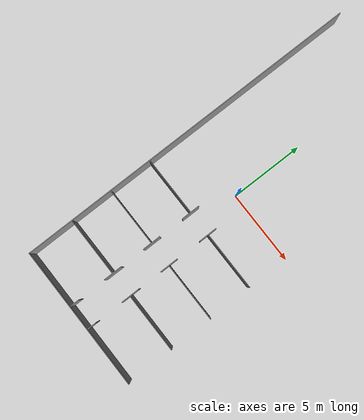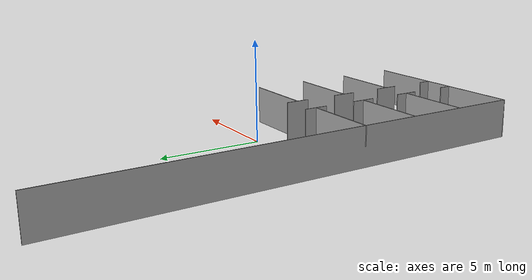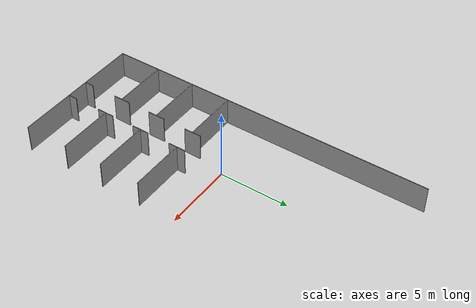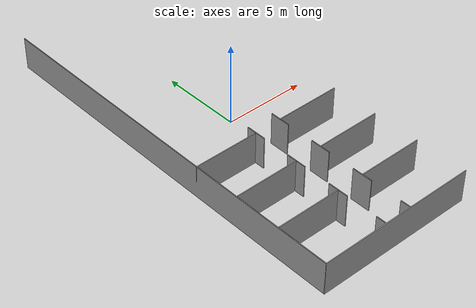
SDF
<sdf version="1.6">
 <model name="Straight_corridor_v2">
  <link name="long_wall_1">
   <inertial>
    <mass>61760</mass>
    <inertia>
     <ixx>5.2702e+06</ixx>
     <ixy>0</ixy>
     <ixz>0</ixz>
     <iyy>20599.5</iyy>
     <iyz>0</iyz>
     <izz>5.29077e+06</izz>
    </inertia>
   </inertial>
   <pose>-4.875 0 0.5 0 1.57066 0</pose>
   <visual name="visual">
    <geometry><box><size>2 24 0.05</size></box></geometry>
    <material>
     <lighting>1</lighting>
     <script><uri>file://media/materials/scripts/gazebo.material</uri><name>Gazebo/Grey</name></script>
     <shader type="vertex"><normal_map>__default__</normal_map></shader>
     <ambient>0.3 0.3 0.3 1</ambient>
     <diffuse>0.7 0.7 0.7 1</diffuse>
     <specular>0.01 0.01 0.01 1</specular>
     <emissive>0 0 0 1</emissive>
    </material>
   </visual>
   <collision name="collision">
    <geometry><box><size>2 24 0.05</size></box></geometry>
    <surface>
     <friction>
      <ode><mu>1</mu><mu2>1</mu2><fdir1>0 0 0</fdir1><slip1>0</slip1><slip2>0</slip2></ode>
      <torsional>
       <coefficient>1</coefficient>
       <patch_radius>0</patch_radius>
       <surface_radius>0</surface_radius>
       <use_patch_radius>1</use_patch_radius>
       <ode><slip>0</slip></ode>
      </torsional>
     </friction>
     <bounce><restitution_coefficient>0</restitution_coefficient><threshold>1e+06</threshold></bounce>
     <contact>
      <collide_without_contact>0</collide_without_contact>
      <collide_without_contact_bitmask>1</collide_without_contact_bitmask>
      <collide_bitmask>1</collide_bitmask>
      <ode>
       <soft_cfm>0</soft_cfm>
       <soft_erp>0.2</soft_erp>
       <kp>1e+13</kp>
       <kd>1</kd>
       <max_vel>0.01</max_vel>
       <min_depth>0</min_depth>
      </ode>
      <bullet>
       <split_impulse>1</split_impulse>
       <split_impulse_penetration_threshold>-0.01</split_impulse_penetration_threshold>
       <soft_cfm>0</soft_cfm>
       <soft_erp>0.2</soft_erp>
       <kp>1e+13</kp>
       <kd>1</kd>
      </bullet>
     </contact>
    </surface>
   </collision>
  </link>
  <link name="link_0_clone_0">
   <inertial>
    <mass>30880</mass>
    <inertia><ixx>658780</ixx><ixy>0</ixy><ixz>0</ixz><iyy>10299.8</iyy><iyz>0</iyz><izz>669067</izz></inertia>
   </inertial>
   <pose>-0 -12 0.5 1.58015 1.57079 -3.13224</pose>
   <visual name="visual">
    <geometry><box><size>2 9.8 0.05</size></box></geometry>
    <material>
     <lighting>1</lighting>
     <script><uri>file://media/materials/scripts/gazebo.material</uri><name>Gazebo/Grey</name></script>
     <shader type="pixel"><normal_map>__default__</normal_map></shader>
     <ambient>0.3 0.3 0.3 1</ambient>
     <diffuse>0.7 0.7 0.7 1</diffuse>
     <specular>0.01 0.01 0.01 1</specular>
     <emissive>0 0 0 1</emissive>
    </material>
   </visual>
   <collision name="collision">
    <geometry><box><size>2 9.8 0.05</size></box></geometry>
    <surface>
     <friction>
      <ode><mu>1</mu><mu2>1</mu2><fdir1>0 0 0</fdir1><slip1>0</slip1><slip2>0</slip2></ode>
      <torsional>
       <coefficient>1</coefficient>
       <patch_radius>0</patch_radius>
       <surface_radius>0</surface_radius>
       <use_patch_radius>1</use_patch_radius>
       <ode><slip>0</slip></ode>
      </torsional>
     </friction>
     <bounce><restitution_coefficient>0</restitution_coefficient><threshold>1e+06</threshold></bounce>
     <contact>
      <collide_without_contact>0</collide_without_contact>
      <collide_without_contact_bitmask>1</collide_without_contact_bitmask>
      <collide_bitmask>1</collide_bitmask>
      <ode>
       <soft_cfm>0</soft_cfm>
       <soft_erp>0.2</soft_erp>
       <kp>1e+13</kp>
       <kd>1</kd>
       <max_vel>0.01</max_vel>
       <min_depth>0</min_depth>
      </ode>
      <bullet>
       <split_impulse>1</split_impulse>
       <split_impulse_penetration_threshold>-0.01</split_impulse_penetration_threshold>
       <soft_cfm>0</soft_cfm>
       <soft_erp>0.2</soft_erp>
       <kp>1e+13</kp>
       <kd>1</kd>
      </bullet>
     </contact>
    </surface>
   </collision>
  </link>
  <link name="link_0_clone_clone">
   <inertial>
    <mass>2412.5</mass>
    <inertia><ixx>314.63</ixx><ixy>0</ixy><ixz>0</ixz><iyy>804.669</iyy><iyz>0</iyz><izz>1118.29</izz></inertia>
   </inertial>
   <pose>0.85 -8.8 0.500001 3.14159 1.57079 3.14159</pose>
   <visual name="visual">
    <geometry><box><size>2 1.25 0.05</size></box></geometry>
    <material>
     <lighting>1</lighting>
     <script><uri>file://media/materials/scripts/gazebo.material</uri><name>Gazebo/Grey</name></script>
     <shader type="pixel"><normal_map>__default__</normal_map></shader>
     <ambient>0.3 0.3 0.3 1</ambient>
     <diffuse>0.7 0.7 0.7 1</diffuse>
     <specular>0.01 0.01 0.01 1</specular>
     <emissive>0 0 0 1</emissive>
    </material>
   </visual>
   <collision name="collision">
    <geometry><box><size>2 1.25 0.05</size></box></geometry>
    <surface>
     <friction>
      <ode><mu>1</mu><mu2>1</mu2><fdir1>0 0 0</fdir1><slip1>0</slip1><slip2>0</slip2></ode>
      <torsional>
       <coefficient>1</coefficient>
       <patch_radius>0</patch_radius>
       <surface_radius>0</surface_radius>
       <use_patch_radius>1</use_patch_radius>
       <ode><slip>0</slip></ode>
      </torsional>
     </friction>
     <bounce><restitution_coefficient>0</restitution_coefficient><threshold>1e+06</threshold></bounce>
     <contact>
      <collide_without_contact>0</collide_without_contact>
      <collide_without_contact_bitmask>1</collide_without_contact_bitmask>
      <collide_bitmask>1</collide_bitmask>
      <ode>
       <soft_cfm>0</soft_cfm>
       <soft_erp>0.2</soft_erp>
       <kp>1e+13</kp>
       <kd>1</kd>
       <max_vel>0.01</max_vel>
       <min_depth>0</min_depth>
      </ode>
      <bullet>
       <split_impulse>1</split_impulse>
       <split_impulse_penetration_threshold>-0.01</split_impulse_penetration_threshold>
       <soft_cfm>0</soft_cfm>
       <soft_erp>0.2</soft_erp>
       <kp>1e+13</kp>
       <kd>1</kd>
      </bullet>
     </contact>
    </surface>
   </collision>
  </link>
  <link name="link_0_clone_clone_clone">
   <inertial>
    <mass>2412.5</mass>
    <inertia><ixx>314.63</ixx><ixy>0</ixy><ixz>0</ixz><iyy>804.669</iyy><iyz>0</iyz><izz>1118.29</izz></inertia>
   </inertial>
   <pose>0.85 -5.8665 0.5 0 1.57066 0</pose>
   <visual name="visual">
    <geometry><box><size>2 1.25 0.05</size></box></geometry>
    <material>
     <lighting>1</lighting>
     <script><uri>file://media/materials/scripts/gazebo.material</uri><name>Gazebo/Grey</name></script>
     <shader type="pixel"><normal_map>__default__</normal_map></shader>
     <ambient>0.3 0.3 0.3 1</ambient>
     <diffuse>0.7 0.7 0.7 1</diffuse>
     <specular>0.01 0.01 0.01 1</specular>
     <emissive>0 0 0 1</emissive>
    </material>
   </visual>
   <collision name="collision">
    <geometry><box><size>2 1.25 0.05</size></box></geometry>
    <surface>
     <friction>
      <ode><mu>1</mu><mu2>1</mu2><fdir1>0 0 0</fdir1><slip1>0</slip1><slip2>0</slip2></ode>
      <torsional>
       <coefficient>1</coefficient>
       <patch_radius>0</patch_radius>
       <surface_radius>0</surface_radius>
       <use_patch_radius>1</use_patch_radius>
       <ode><slip>0</slip></ode>
      </torsional>
     </friction>
     <bounce><restitution_coefficient>0</restitution_coefficient><threshold>1e+06</threshold></bounce>
     <contact>
      <collide_without_contact>0</collide_without_contact>
      <collide_without_contact_bitmask>1</collide_without_contact_bitmask>
      <collide_bitmask>1</collide_bitmask>
      <ode>
       <soft_cfm>0</soft_cfm>
       <soft_erp>0.2</soft_erp>
       <kp>1e+13</kp>
       <kd>1</kd>
       <max_vel>0.01</max_vel>
       <min_depth>0</min_depth>
      </ode>
      <bullet>
       <split_impulse>1</split_impulse>
       <split_impulse_penetration_threshold>-0.01</split_impulse_penetration_threshold>
       <soft_cfm>0</soft_cfm>
       <soft_erp>0.2</soft_erp>
       <kp>1e+13</kp>
       <kd>1</kd>
      </bullet>
     </contact>
    </surface>
   </collision>
  </link>
  <link name="link_0_clone_clone_clone_0">
   <inertial>
    <mass>2412.5</mass>
    <inertia><ixx>314.63</ixx><ixy>0</ixy><ixz>0</ixz><iyy>804.669</iyy><iyz>0</iyz><izz>1118.29</izz></inertia>
   </inertial>
   <pose>0.85 -2.895 0.5 0 1.57066 0</pose>
   <visual name="visual">
    <geometry><box><size>2 1.25 0.05</size></box></geometry>
    <material>
     <lighting>1</lighting>
     <script><uri>file://media/materials/scripts/gazebo.material</uri><name>Gazebo/Grey</name></script>
     <shader type="pixel"><normal_map>__default__</normal_map></shader>
     <ambient>0.3 0.3 0.3 1</ambient>
     <diffuse>0.7 0.7 0.7 1</diffuse>
     <specular>0.01 0.01 0.01 1</specular>
     <emissive>0 0 0 1</emissive>
    </material>
   </visual>
   <collision name="collision">
    <geometry><box><size>2 1.25 0.05</size></box></geometry>
    <surface>
     <friction>
      <ode><mu>1</mu><mu2>1</mu2><fdir1>0 0 0</fdir1><slip1>0</slip1><slip2>0</slip2></ode>
      <torsional>
       <coefficient>1</coefficient>
       <patch_radius>0</patch_radius>
       <surface_radius>0</surface_radius>
       <use_patch_radius>1</use_patch_radius>
       <ode><slip>0</slip></ode>
      </torsional>
     </friction>
     <bounce><restitution_coefficient>0</restitution_coefficient><threshold>1e+06</threshold></bounce>
     <contact>
      <collide_without_contact>0</collide_without_contact>
      <collide_without_contact_bitmask>1</collide_without_contact_bitmask>
      <collide_bitmask>1</collide_bitmask>
      <ode>
       <soft_cfm>0</soft_cfm>
       <soft_erp>0.2</soft_erp>
       <kp>1e+13</kp>
       <kd>1</kd>
       <max_vel>0.01</max_vel>
       <min_depth>0</min_depth>
      </ode>
      <bullet>
       <split_impulse>1</split_impulse>
       <split_impulse_penetration_threshold>-0.01</split_impulse_penetration_threshold>
       <soft_cfm>0</soft_cfm>
       <soft_erp>0.2</soft_erp>
       <kp>1e+13</kp>
       <kd>1</kd>
      </bullet>
     </contact>
    </surface>
   </collision>
  </link>
  <link name="link_0_clone_clone_clone_0_clone">
   <inertial>
    <mass>2412.5</mass>
    <inertia><ixx>314.63</ixx><ixy>0</ixy><ixz>0</ixz><iyy>804.669</iyy><iyz>0</iyz><izz>1118.29</izz></inertia>
   </inertial>
   <pose>-0.85 -2.895 0.5 0 1.57051 0</pose>
   <visual name="visual">
    <geometry><box><size>2 1.25 0.05</size></box></geometry>
    <material>
     <lighting>1</lighting>
     <script><uri>file://media/materials/scripts/gazebo.material</uri><name>Gazebo/Grey</name></script>
     <shader type="pixel"><normal_map>__default__</normal_map></shader>
     <ambient>0.3 0.3 0.3 1</ambient>
     <diffuse>0.7 0.7 0.7 1</diffuse>
     <specular>0.01 0.01 0.01 1</specular>
     <emissive>0 0 0 1</emissive>
    </material>
   </visual>
   <collision name="collision">
    <geometry><box><size>2 1.25 0.05</size></box></geometry>
    <surface>
     <friction>
      <ode><mu>1</mu><mu2>1</mu2><fdir1>0 0 0</fdir1><slip1>0</slip1><slip2>0</slip2></ode>
      <torsional>
       <coefficient>1</coefficient>
       <patch_radius>0</patch_radius>
       <surface_radius>0</surface_radius>
       <use_patch_radius>1</use_patch_radius>
       <ode><slip>0</slip></ode>
      </torsional>
     </friction>
     <bounce><restitution_coefficient>0</restitution_coefficient><threshold>1e+06</threshold></bounce>
     <contact>
      <collide_without_contact>0</collide_without_contact>
      <collide_without_contact_bitmask>1</collide_without_contact_bitmask>
      <collide_bitmask>1</collide_bitmask>
      <ode>
       <soft_cfm>0</soft_cfm>
       <soft_erp>0.2</soft_erp>
       <kp>1e+13</kp>
       <kd>1</kd>
       <max_vel>0.01</max_vel>
       <min_depth>0</min_depth>
      </ode>
      <bullet>
       <split_impulse>1</split_impulse>
       <split_impulse_penetration_threshold>-0.01</split_impulse_penetration_threshold>
       <soft_cfm>0</soft_cfm>
       <soft_erp>0.2</soft_erp>
       <kp>1e+13</kp>
       <kd>1</kd>
      </bullet>
     </contact>
    </surface>
   </collision>
  </link>
  <link name="link_0_clone_clone_clone_4">
   <inertial>
    <mass>1206.25</mass>
    <inertia><ixx>39.5173</ixx><ixy>0</ixy><ixz>0</ixz><iyy>402.335</iyy><iyz>0</iyz><izz>441.349</izz></inertia>
   </inertial>
   <pose>0.85 -11.6736 0.5 0 1.57066 0</pose>
   <visual name="visual">
    <geometry><box><size>2 0.625 0.05</size></box></geometry>
    <material>
     <lighting>1</lighting>
     <script><uri>file://media/materials/scripts/gazebo.material</uri><name>Gazebo/Grey</name></script>
     <shader type="pixel"><normal_map>__default__</normal_map></shader>
     <ambient>0.3 0.3 0.3 1</ambient>
     <diffuse>0.7 0.7 0.7 1</diffuse>
     <specular>0.01 0.01 0.01 1</specular>
     <emissive>0 0 0 1</emissive>
    </material>
   </visual>
   <collision name="collision">
    <geometry><box><size>2 0.625 0.05</size></box></geometry>
    <surface>
     <friction>
      <ode><mu>1</mu><mu2>1</mu2><fdir1>0 0 0</fdir1><slip1>0</slip1><slip2>0</slip2></ode>
      <torsional>
       <coefficient>1</coefficient>
       <patch_radius>0</patch_radius>
       <surface_radius>0</surface_radius>
       <use_patch_radius>1</use_patch_radius>
       <ode><slip>0</slip></ode>
      </torsional>
     </friction>
     <bounce><restitution_coefficient>0</restitution_coefficient><threshold>1e+06</threshold></bounce>
     <contact>
      <collide_without_contact>0</collide_without_contact>
      <collide_without_contact_bitmask>1</collide_without_contact_bitmask>
      <collide_bitmask>1</collide_bitmask>
      <ode>
       <soft_cfm>0</soft_cfm>
       <soft_erp>0.2</soft_erp>
       <kp>1e+13</kp>
       <kd>1</kd>
       <max_vel>0.01</max_vel>
       <min_depth>0</min_depth>
      </ode>
      <bullet>
       <split_impulse>1</split_impulse>
       <split_impulse_penetration_threshold>-0.01</split_impulse_penetration_threshold>
       <soft_cfm>0</soft_cfm>
       <soft_erp>0.2</soft_erp>
       <kp>1e+13</kp>
       <kd>1</kd>
      </bullet>
     </contact>
    </surface>
   </collision>
  </link>
  <link name="link_0_clone_clone_clone_4_clone">
   <inertial>
    <mass>1206.25</mass>
    <inertia><ixx>39.5173</ixx><ixy>0</ixy><ixz>0</ixz><iyy>402.335</iyy><iyz>0</iyz><izz>441.349</izz></inertia>
   </inertial>
   <pose>-0.85 -11.6649 0.5 0 1.57051 0</pose>
   <visual name="visual">
    <geometry><box><size>2 0.625 0.05</size></box></geometry>
    <material>
     <lighting>1</lighting>
     <script><uri>file://media/materials/scripts/gazebo.material</uri><name>Gazebo/Grey</name></script>
     <shader type="pixel"><normal_map>__default__</normal_map></shader>
     <ambient>0.3 0.3 0.3 1</ambient>
     <diffuse>0.7 0.7 0.7 1</diffuse>
     <specular>0.01 0.01 0.01 1</specular>
     <emissive>0 0 0 1</emissive>
    </material>
   </visual>
   <collision name="collision">
    <geometry><box><size>2 0.625 0.05</size></box></geometry>
    <surface>
     <friction>
      <ode><mu>1</mu><mu2>1</mu2><fdir1>0 0 0</fdir1><slip1>0</slip1><slip2>0</slip2></ode>
      <torsional>
       <coefficient>1</coefficient>
       <patch_radius>0</patch_radius>
       <surface_radius>0</surface_radius>
       <use_patch_radius>1</use_patch_radius>
       <ode><slip>0</slip></ode>
      </torsional>
     </friction>
     <bounce><restitution_coefficient>0</restitution_coefficient><threshold>1e+06</threshold></bounce>
     <contact>
      <collide_without_contact>0</collide_without_contact>
      <collide_without_contact_bitmask>1</collide_without_contact_bitmask>
      <collide_bitmask>1</collide_bitmask>
      <ode>
       <soft_cfm>0</soft_cfm>
       <soft_erp>0.2</soft_erp>
       <kp>1e+13</kp>
       <kd>1</kd>
       <max_vel>0.01</max_vel>
       <min_depth>0</min_depth>
      </ode>
      <bullet>
       <split_impulse>1</split_impulse>
       <split_impulse_penetration_threshold>-0.01</split_impulse_penetration_threshold>
       <soft_cfm>0</soft_cfm>
       <soft_erp>0.2</soft_erp>
       <kp>1e+13</kp>
       <kd>1</kd>
      </bullet>
     </contact>
    </surface>
   </collision>
  </link>
  <link name="link_0_clone_clone_clone_5">
   <inertial>
    <mass>2412.5</mass>
    <inertia><ixx>314.63</ixx><ixy>0</ixy><ixz>0</ixz><iyy>804.669</iyy><iyz>0</iyz><izz>1118.29</izz></inertia>
   </inertial>
   <pose>-0.85 -8.8 0.5 0 1.57066 0</pose>
   <visual name="visual">
    <geometry><box><size>2 1.25 0.05</size></box></geometry>
    <material>
     <lighting>1</lighting>
     <script><uri>file://media/materials/scripts/gazebo.material</uri><name>Gazebo/Grey</name></script>
     <shader type="pixel"><normal_map>__default__</normal_map></shader>
     <ambient>0.3 0.3 0.3 1</ambient>
     <diffuse>0.7 0.7 0.7 1</diffuse>
     <specular>0.01 0.01 0.01 1</specular>
     <emissive>0 0 0 1</emissive>
    </material>
   </visual>
   <collision name="collision">
    <geometry><box><size>2 1.25 0.05</size></box></geometry>
    <surface>
     <friction>
      <ode><mu>1</mu><mu2>1</mu2><fdir1>0 0 0</fdir1><slip1>0</slip1><slip2>0</slip2></ode>
      <torsional>
       <coefficient>1</coefficient>
       <patch_radius>0</patch_radius>
       <surface_radius>0</surface_radius>
       <use_patch_radius>1</use_patch_radius>
       <ode><slip>0</slip></ode>
      </torsional>
     </friction>
     <bounce><restitution_coefficient>0</restitution_coefficient><threshold>1e+06</threshold></bounce>
     <contact>
      <collide_without_contact>0</collide_without_contact>
      <collide_without_contact_bitmask>1</collide_without_contact_bitmask>
      <collide_bitmask>1</collide_bitmask>
      <ode>
       <soft_cfm>0</soft_cfm>
       <soft_erp>0.2</soft_erp>
       <kp>1e+13</kp>
       <kd>1</kd>
       <max_vel>0.01</max_vel>
       <min_depth>0</min_depth>
      </ode>
      <bullet>
       <split_impulse>1</split_impulse>
       <split_impulse_penetration_threshold>-0.01</split_impulse_penetration_threshold>
       <soft_cfm>0</soft_cfm>
       <soft_erp>0.2</soft_erp>
       <kp>1e+13</kp>
       <kd>1</kd>
      </bullet>
     </contact>
    </surface>
   </collision>
  </link>
  <link name="link_0_clone_clone_clone_clone_0">
   <inertial>
    <mass>2412.5</mass>
    <inertia><ixx>314.63</ixx><ixy>0</ixy><ixz>0</ixz><iyy>804.669</iyy><iyz>0</iyz><izz>1118.29</izz></inertia>
   </inertial>
   <pose>-0.85 -5.8665 0.500151 0 1.57051 0</pose>
   <visual name="visual">
    <geometry><box><size>2 1.25 0.05</size></box></geometry>
    <material>
     <lighting>1</lighting>
     <script><uri>file://media/materials/scripts/gazebo.material</uri><name>Gazebo/Grey</name></script>
     <shader type="pixel"><normal_map>__default__</normal_map></shader>
     <ambient>0.3 0.3 0.3 1</ambient>
     <diffuse>0.7 0.7 0.7 1</diffuse>
     <specular>0.01 0.01 0.01 1</specular>
     <emissive>0 0 0 1</emissive>
    </material>
   </visual>
   <collision name="collision">
    <geometry><box><size>2 1.25 0.05</size></box></geometry>
    <surface>
     <friction>
      <ode><mu>1</mu><mu2>1</mu2><fdir1>0 0 0</fdir1><slip1>0</slip1><slip2>0</slip2></ode>
      <torsional>
       <coefficient>1</coefficient>
       <patch_radius>0</patch_radius>
       <surface_radius>0</surface_radius>
       <use_patch_radius>1</use_patch_radius>
       <ode><slip>0</slip></ode>
      </torsional>
     </friction>
     <bounce><restitution_coefficient>0</restitution_coefficient><threshold>1e+06</threshold></bounce>
     <contact>
      <collide_without_contact>0</collide_without_contact>
      <collide_without_contact_bitmask>1</collide_without_contact_bitmask>
      <collide_bitmask>1</collide_bitmask>
      <ode>
       <soft_cfm>0</soft_cfm>
       <soft_erp>0.2</soft_erp>
       <kp>1e+13</kp>
       <kd>1</kd>
       <max_vel>0.01</max_vel>
       <min_depth>0</min_depth>
      </ode>
      <bullet>
       <split_impulse>1</split_impulse>
       <split_impulse_penetration_threshold>-0.01</split_impulse_penetration_threshold>
       <soft_cfm>0</soft_cfm>
       <soft_erp>0.2</soft_erp>
       <kp>1e+13</kp>
       <kd>1</kd>
      </bullet>
     </contact>
    </surface>
   </collision>
  </link>
  <link name="link_0_clone_clone_clone_clone_clone_clone_clone_0">
   <inertial>
    <mass>11580</mass>
    <inertia><ixx>34742.4</ixx><ixy>0</ixy><ixz>0</ixz><iyy>3862.41</iyy><iyz>0</iyz><izz>38600</izz></inertia>
   </inertial>
   <pose>2.85 -2.895 0.5 1.57094 1.57039 0.000147</pose>
   <visual name="visual">
    <geometry><box><size>2 4 0.05</size></box></geometry>
    <material>
     <lighting>1</lighting>
     <script><uri>file://media/materials/scripts/gazebo.material</uri><name>Gazebo/Grey</name></script>
     <shader type="pixel"><normal_map>__default__</normal_map></shader>
     <ambient>0.3 0.3 0.3 1</ambient>
     <diffuse>0.7 0.7 0.7 1</diffuse>
     <specular>0.01 0.01 0.01 1</specular>
     <emissive>0 0 0 1</emissive>
    </material>
   </visual>
   <collision name="collision">
    <geometry><box><size>2 4 0.05</size></box></geometry>
    <surface>
     <friction>
      <ode><mu>1</mu><mu2>1</mu2><fdir1>0 0 0</fdir1><slip1>0</slip1><slip2>0</slip2></ode>
      <torsional>
       <coefficient>1</coefficient>
       <patch_radius>0</patch_radius>
       <surface_radius>0</surface_radius>
       <use_patch_radius>1</use_patch_radius>
       <ode><slip>0</slip></ode>
      </torsional>
     </friction>
     <bounce><restitution_coefficient>0</restitution_coefficient><threshold>1e+06</threshold></bounce>
     <contact>
      <collide_without_contact>0</collide_without_contact>
      <collide_without_contact_bitmask>1</collide_without_contact_bitmask>
      <collide_bitmask>1</collide_bitmask>
      <ode>
       <soft_cfm>0</soft_cfm>
       <soft_erp>0.2</soft_erp>
       <kp>1e+13</kp>
       <kd>1</kd>
       <max_vel>0.01</max_vel>
       <min_depth>0</min_depth>
      </ode>
      <bullet>
       <split_impulse>1</split_impulse>
       <split_impulse_penetration_threshold>-0.01</split_impulse_penetration_threshold>
       <soft_cfm>0</soft_cfm>
       <soft_erp>0.2</soft_erp>
       <kp>1e+13</kp>
       <kd>1</kd>
      </bullet>
     </contact>
    </surface>
   </collision>
  </link>
  <link name="link_0_clone_clone_clone_clone_clone_clone_clone_1">
   <inertial>
    <mass>11580</mass>
    <inertia><ixx>34742.4</ixx><ixy>0</ixy><ixz>0</ixz><iyy>3862.41</iyy><iyz>0</iyz><izz>38600</izz></inertia>
   </inertial>
   <pose>2.875 -5.8665 0.5 1.571 1.57037 0.000215</pose>
   <visual name="visual">
    <geometry><box><size>2 4 0.05</size></box></geometry>
    <material>
     <lighting>1</lighting>
     <script><uri>file://media/materials/scripts/gazebo.material</uri><name>Gazebo/Grey</name></script>
     <shader type="pixel"><normal_map>__default__</normal_map></shader>
     <ambient>0.3 0.3 0.3 1</ambient>
     <diffuse>0.7 0.7 0.7 1</diffuse>
     <specular>0.01 0.01 0.01 1</specular>
     <emissive>0 0 0 1</emissive>
    </material>
   </visual>
   <collision name="collision">
    <geometry><box><size>2 4 0.05</size></box></geometry>
    <surface>
     <friction>
      <ode><mu>1</mu><mu2>1</mu2><fdir1>0 0 0</fdir1><slip1>0</slip1><slip2>0</slip2></ode>
      <torsional>
       <coefficient>1</coefficient>
       <patch_radius>0</patch_radius>
       <surface_radius>0</surface_radius>
       <use_patch_radius>1</use_patch_radius>
       <ode><slip>0</slip></ode>
      </torsional>
     </friction>
     <bounce><restitution_coefficient>0</restitution_coefficient><threshold>1e+06</threshold></bounce>
     <contact>
      <collide_without_contact>0</collide_without_contact>
      <collide_without_contact_bitmask>1</collide_without_contact_bitmask>
      <collide_bitmask>1</collide_bitmask>
      <ode>
       <soft_cfm>0</soft_cfm>
       <soft_erp>0.2</soft_erp>
       <kp>1e+13</kp>
       <kd>1</kd>
       <max_vel>0.01</max_vel>
       <min_depth>0</min_depth>
      </ode>
      <bullet>
       <split_impulse>1</split_impulse>
       <split_impulse_penetration_threshold>-0.01</split_impulse_penetration_threshold>
       <soft_cfm>0</soft_cfm>
       <soft_erp>0.2</soft_erp>
       <kp>1e+13</kp>
       <kd>1</kd>
      </bullet>
     </contact>
    </surface>
   </collision>
  </link>
  <link name="link_0_clone_clone_clone_clone_clone_clone_clone_2">
   <inertial>
    <mass>11580</mass>
    <inertia><ixx>34742.4</ixx><ixy>0</ixy><ixz>0</ixz><iyy>3862.41</iyy><iyz>0</iyz><izz>38600</izz></inertia>
   </inertial>
   <pose>2.875 -8.8 0.50147 1.57149 1.57037 0.000704</pose>
   <visual name="visual">
    <geometry><box><size>2 4 0.05</size></box></geometry>
    <material>
     <lighting>1</lighting>
     <script><uri>file://media/materials/scripts/gazebo.material</uri><name>Gazebo/Grey</name></script>
     <shader type="pixel"><normal_map>__default__</normal_map></shader>
     <ambient>0.3 0.3 0.3 1</ambient>
     <diffuse>0.7 0.7 0.7 1</diffuse>
     <specular>0.01 0.01 0.01 1</specular>
     <emissive>0 0 0 1</emissive>
    </material>
   </visual>
   <collision name="collision">
    <geometry><box><size>2 4 0.05</size></box></geometry>
    <surface>
     <friction>
      <ode><mu>1</mu><mu2>1</mu2><fdir1>0 0 0</fdir1><slip1>0</slip1><slip2>0</slip2></ode>
      <torsional>
       <coefficient>1</coefficient>
       <patch_radius>0</patch_radius>
       <surface_radius>0</surface_radius>
       <use_patch_radius>1</use_patch_radius>
       <ode><slip>0</slip></ode>
      </torsional>
     </friction>
     <bounce><restitution_coefficient>0</restitution_coefficient><threshold>1e+06</threshold></bounce>
     <contact>
      <collide_without_contact>0</collide_without_contact>
      <collide_without_contact_bitmask>1</collide_without_contact_bitmask>
      <collide_bitmask>1</collide_bitmask>
      <ode>
       <soft_cfm>0</soft_cfm>
       <soft_erp>0.2</soft_erp>
       <kp>1e+13</kp>
       <kd>1</kd>
       <max_vel>0.01</max_vel>
       <min_depth>0</min_depth>
      </ode>
      <bullet>
       <split_impulse>1</split_impulse>
       <split_impulse_penetration_threshold>-0.01</split_impulse_penetration_threshold>
       <soft_cfm>0</soft_cfm>
       <soft_erp>0.2</soft_erp>
       <kp>1e+13</kp>
       <kd>1</kd>
      </bullet>
     </contact>
    </surface>
   </collision>
  </link>
  <link name="link_0_clone_clone_clone_clone_clone_clone_clone_3">
   <inertial>
    <mass>11580</mass>
    <inertia><ixx>34742.4</ixx><ixy>0</ixy><ixz>0</ixz><iyy>3862.41</iyy><iyz>0</iyz><izz>38600</izz></inertia>
   </inertial>
   <pose>-2.875 -8.8 0.5 1.571 1.57037 0.000215</pose>
   <visual name="visual">
    <geometry><box><size>2 4 0.05</size></box></geometry>
    <material>
     <lighting>1</lighting>
     <script><uri>file://media/materials/scripts/gazebo.material</uri><name>Gazebo/Grey</name></script>
     <shader type="pixel"><normal_map>__default__</normal_map></shader>
     <ambient>0.3 0.3 0.3 1</ambient>
     <diffuse>0.7 0.7 0.7 1</diffuse>
     <specular>0.01 0.01 0.01 1</specular>
     <emissive>0 0 0 1</emissive>
    </material>
   </visual>
   <collision name="collision">
    <geometry><box><size>2 4 0.05</size></box></geometry>
    <surface>
     <friction>
      <ode><mu>1</mu><mu2>1</mu2><fdir1>0 0 0</fdir1><slip1>0</slip1><slip2>0</slip2></ode>
      <torsional>
       <coefficient>1</coefficient>
       <patch_radius>0</patch_radius>
       <surface_radius>0</surface_radius>
       <use_patch_radius>1</use_patch_radius>
       <ode><slip>0</slip></ode>
      </torsional>
     </friction>
     <bounce><restitution_coefficient>0</restitution_coefficient><threshold>1e+06</threshold></bounce>
     <contact>
      <collide_without_contact>0</collide_without_contact>
      <collide_without_contact_bitmask>1</collide_without_contact_bitmask>
      <collide_bitmask>1</collide_bitmask>
      <ode>
       <soft_cfm>0</soft_cfm>
       <soft_erp>0.2</soft_erp>
       <kp>1e+13</kp>
       <kd>1</kd>
       <max_vel>0.01</max_vel>
       <min_depth>0</min_depth>
      </ode>
      <bullet>
       <split_impulse>1</split_impulse>
       <split_impulse_penetration_threshold>-0.01</split_impulse_penetration_threshold>
       <soft_cfm>0</soft_cfm>
       <soft_erp>0.2</soft_erp>
       <kp>1e+13</kp>
       <kd>1</kd>
      </bullet>
     </contact>
    </surface>
   </collision>
  </link>
  <link name="link_0_clone_clone_clone_clone_clone_clone_clone_4">
   <inertial>
    <mass>11580</mass>
    <inertia><ixx>34742.4</ixx><ixy>0</ixy><ixz>0</ixz><iyy>3862.41</iyy><iyz>0</iyz><izz>38600</izz></inertia>
   </inertial>
   <pose>-2.875 -5.8665 0.5 1.571 1.57037 0.000215</pose>
   <visual name="visual">
    <geometry><box><size>2 3.96 0.05</size></box></geometry>
    <material>
     <lighting>1</lighting>
     <script><uri>file://media/materials/scripts/gazebo.material</uri><name>Gazebo/Grey</name></script>
     <shader type="pixel"><normal_map>__default__</normal_map></shader>
     <ambient>0.3 0.3 0.3 1</ambient>
     <diffuse>0.7 0.7 0.7 1</diffuse>
     <specular>0.01 0.01 0.01 1</specular>
     <emissive>0 0 0 1</emissive>
    </material>
   </visual>
   <collision name="collision">
    <geometry><box><size>2 4 0.05</size></box></geometry>
    <surface>
     <friction>
      <ode><mu>1</mu><mu2>1</mu2><fdir1>0 0 0</fdir1><slip1>0</slip1><slip2>0</slip2></ode>
      <torsional>
       <coefficient>1</coefficient>
       <patch_radius>0</patch_radius>
       <surface_radius>0</surface_radius>
       <use_patch_radius>1</use_patch_radius>
       <ode><slip>0</slip></ode>
      </torsional>
     </friction>
     <bounce><restitution_coefficient>0</restitution_coefficient><threshold>1e+06</threshold></bounce>
     <contact>
      <collide_without_contact>0</collide_without_contact>
      <collide_without_contact_bitmask>1</collide_without_contact_bitmask>
      <collide_bitmask>1</collide_bitmask>
      <ode>
       <soft_cfm>0</soft_cfm>
       <soft_erp>0.2</soft_erp>
       <kp>1e+13</kp>
       <kd>1</kd>
       <max_vel>0.01</max_vel>
       <min_depth>0</min_depth>
      </ode>
      <bullet>
       <split_impulse>1</split_impulse>
       <split_impulse_penetration_threshold>-0.01</split_impulse_penetration_threshold>
       <soft_cfm>0</soft_cfm>
       <soft_erp>0.2</soft_erp>
       <kp>1e+13</kp>
       <kd>1</kd>
      </bullet>
     </contact>
    </surface>
   </collision>
  </link>
  <link name="link_0_clone_clone_clone_clone_clone_clone_clone_5">
   <inertial>
    <mass>11580</mass>
    <inertia><ixx>34742.4</ixx><ixy>0</ixy><ixz>0</ixz><iyy>3862.41</iyy><iyz>0</iyz><izz>38600</izz></inertia>
   </inertial>
   <pose>-2.9 -2.895 0.5 1.571 1.57037 0.000215</pose>
   <visual name="visual">
    <geometry><box><size>2 4 0.05</size></box></geometry>
    <material>
     <lighting>1</lighting>
     <script><uri>file://media/materials/scripts/gazebo.material</uri><name>Gazebo/Grey</name></script>
     <shader type="pixel"><normal_map>__default__</normal_map></shader>
     <ambient>0.3 0.3 0.3 1</ambient>
     <diffuse>0.7 0.7 0.7 1</diffuse>
     <specular>0.01 0.01 0.01 1</specular>
     <emissive>0 0 0 1</emissive>
    </material>
   </visual>
   <collision name="collision">
    <geometry><box><size>2 4 0.05</size></box></geometry>
    <surface>
     <friction>
      <ode><mu>1</mu><mu2>1</mu2><fdir1>0 0 0</fdir1><slip1>0</slip1><slip2>0</slip2></ode>
      <torsional>
       <coefficient>1</coefficient>
       <patch_radius>0</patch_radius>
       <surface_radius>0</surface_radius>
       <use_patch_radius>1</use_patch_radius>
       <ode><slip>0</slip></ode>
      </torsional>
     </friction>
     <bounce><restitution_coefficient>0</restitution_coefficient><threshold>1e+06</threshold></bounce>
     <contact>
      <collide_without_contact>0</collide_without_contact>
      <collide_without_contact_bitmask>1</collide_without_contact_bitmask>
      <collide_bitmask>1</collide_bitmask>
      <ode>
       <soft_cfm>0</soft_cfm>
       <soft_erp>0.2</soft_erp>
       <kp>1e+13</kp>
       <kd>1</kd>
       <max_vel>0.01</max_vel>
       <min_depth>0</min_depth>
      </ode>
      <bullet>
       <split_impulse>1</split_impulse>
       <split_impulse_penetration_threshold>-0.01</split_impulse_penetration_threshold>
       <soft_cfm>0</soft_cfm>
       <soft_erp>0.2</soft_erp>
       <kp>1e+13</kp>
       <kd>1</kd>
      </bullet>
     </contact>
    </surface>
   </collision>
  </link>
  <static>0</static>
 </model>
</sdf>
